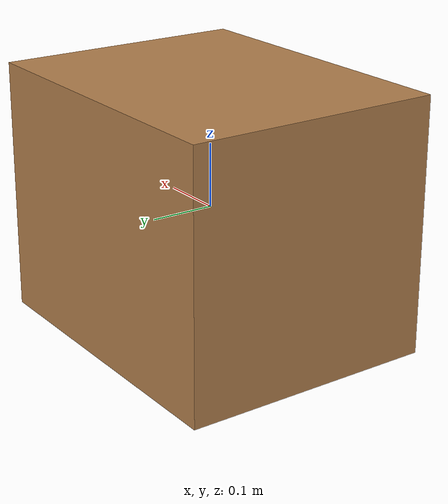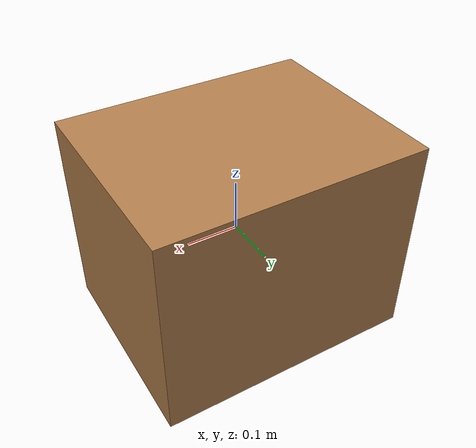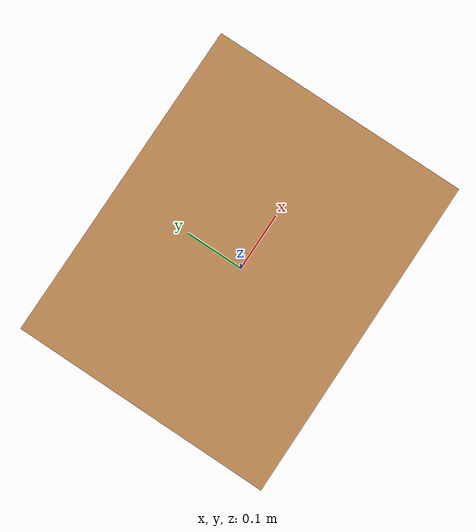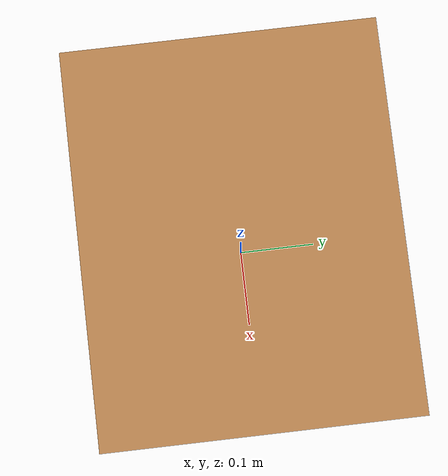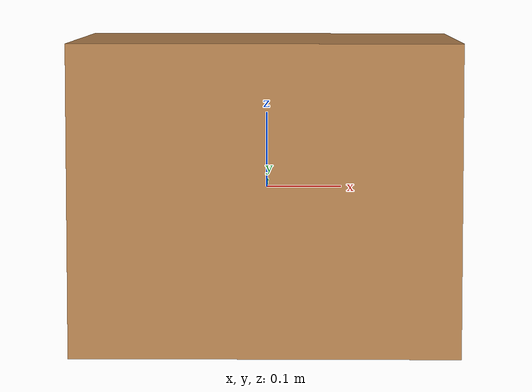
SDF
<?xml version="1.0"?>
<sdf version="1.10">
  <model name="cardboard_box">
    <static>false</static>
    <link name="box">
      <collision name="collision">
        <geometry>
          <box>
            <size>0.5 0.4 0.4</size>
          </box>
        </geometry>
        <surface>
          <bounce/>
          <friction>
            <ode>
              <mu>0.8</mu>
              <mu2>0.8</mu2>
            </ode>
          </friction>
        </surface>
      </collision>
      <visual name="visual">
        <geometry>
          <box>
            <size>0.5 0.4 0.4</size>
          </box>
        </geometry>
        <material>
          <ambient>0.6 0.45 0.25 1</ambient>
          <diffuse>0.7 0.5 0.3 1</diffuse>
          <specular>0.2 0.15 0.05 1</specular>
        </material>
      </visual>
      <inertial>
        <mass>2.0</mass>
        <inertia>
          <ixx>0.016</ixx>
          <iyy>0.012</iyy>
          <izz>0.020</izz>
          <ixy>0</ixy>
          <ixz>0</ixz>
          <iyz>0</iyz>
        </inertia>
      </inertial>
    </link>
  </model>
</sdf>
